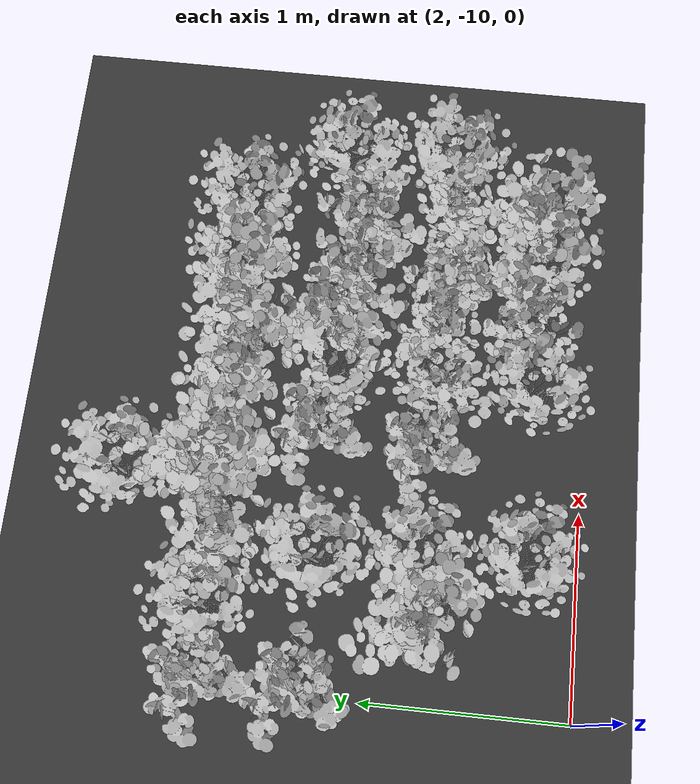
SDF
<sdf version="1.7">
 <world name="default">
  <model name="ground_plane">
   <static>1</static>
   <link name="link">
    <collision name="collision">
     <geometry><plane><normal>0 0 1</normal><size>100 100</size></plane></geometry>
     <surface>
      <contact><collide_bitmask>65535</collide_bitmask></contact>
      <friction><ode><mu>100</mu><mu2>50</mu2></ode></friction>
     </surface>
    </collision>
    <visual name="visual">
     <cast_shadows>0</cast_shadows>
     <geometry><plane><normal>0 0 1</normal><size>100 100</size></plane></geometry>
     <material>
      <ambient>0.2 0.2 0.2 1.0</ambient>
      <diffuse>0.2 0.2 0.2 1.0</diffuse>
      <specular>0.2 0.2 0.2 1.0</specular>
      <emissive>0.2 0.2 0.2 1.0</emissive>
     </material>
    </visual>
   </link>
  </model>
  <model name="ground">
   <pose>5 -0.5 0.01  3.141592654 0 0</pose>
   <static>true</static>
   <link name="body">
    <visual name="visual">
     <cast_shadows>0</cast_shadows>
     <geometry>
      <mesh><uri>file:///home/ifcosta/final_ws/src/cnn_line/worlds/models/ground.obj</uri></mesh>
     </geometry>
    </visual>
   </link>
  </model>
  <model name="plt_30043">
   <pose>2.74 -9.75 0.0141 0.0 0.0 -0.092382</pose>
   <static>true</static>
   <link name="body">
    <visual name="visual">
     <geometry>
      <mesh><uri>file:///home/ifcosta/final_ws/src/cnn_line/worlds/models/plant35.obj</uri></mesh>
     </geometry>
    </visual>
   </link>
  </model>
  <model name="plt_30046">
   <pose>3.6 -9.74 0.0158 0.0 0.0 0.53966</pose>
   <static>true</static>
   <link name="body">
    <visual name="visual">
     <geometry>
      <mesh><uri>file:///home/ifcosta/final_ws/src/cnn_line/worlds/models/plant35.obj</uri></mesh>
     </geometry>
    </visual>
   </link>
  </model>
  <model name="plt_30047">
   <pose>3.9 -9.72 0.0159 0.0 0.0 -1.8546</pose>
   <static>true</static>
   <link name="body">
    <visual name="visual">
     <geometry>
      <mesh><uri>file:///home/ifcosta/final_ws/src/cnn_line/worlds/models/plant33.obj</uri></mesh>
     </geometry>
    </visual>
   </link>
  </model>
  <model name="plt_30048">
   <pose>4.25 -9.74 0.0164 0.0 0.0 -0.12643</pose>
   <static>true</static>
   <link name="body">
    <visual name="visual">
     <geometry>
      <mesh><uri>file:///home/ifcosta/final_ws/src/cnn_line/worlds/models/plant32.obj</uri></mesh>
     </geometry>
    </visual>
   </link>
  </model>
  <model name="plt_30049">
   <pose>4.5 -9.71 0.014 0.0 0.0 -1.0114</pose>
   <static>true</static>
   <link name="body">
    <visual name="visual">
     <geometry>
      <mesh><uri>file:///home/ifcosta/final_ws/src/cnn_line/worlds/models/plant30.obj</uri></mesh>
     </geometry>
    </visual>
   </link>
  </model>
  <model name="plt_30076">
   <pose>2.4 -9.26 0.0146 0.0 0.0 -0.79213</pose>
   <static>true</static>
   <link name="body">
    <visual name="visual">
     <geometry>
      <mesh><uri>file:///home/ifcosta/final_ws/src/cnn_line/worlds/models/plant30.obj</uri></mesh>
     </geometry>
    </visual>
   </link>
  </model>
  <model name="plt_30077">
   <pose>2.7 -9.24 0.0145 0.0 0.0 -0.13937</pose>
   <static>true</static>
   <link name="body">
    <visual name="visual">
     <geometry>
      <mesh><uri>file:///home/ifcosta/final_ws/src/cnn_line/worlds/models/plant35.obj</uri></mesh>
     </geometry>
    </visual>
   </link>
  </model>
  <model name="plt_30079">
   <pose>3.28 -9.22 0.0128 0.0 0.0 0.30534</pose>
   <static>true</static>
   <link name="body">
    <visual name="visual">
     <geometry>
      <mesh><uri>file:///home/ifcosta/final_ws/src/cnn_line/worlds/models/plant33.obj</uri></mesh>
     </geometry>
    </visual>
   </link>
  </model>
  <model name="plt_30080">
   <pose>3.59 -9.25 0.0123 0.0 0.0 0.42134</pose>
   <static>true</static>
   <link name="body">
    <visual name="visual">
     <geometry>
      <mesh><uri>file:///home/ifcosta/final_ws/src/cnn_line/worlds/models/plant31.obj</uri></mesh>
     </geometry>
    </visual>
   </link>
  </model>
  <model name="plt_30081">
   <pose>3.89 -9.22 0.0166 0.0 0.0 2.1917</pose>
   <static>true</static>
   <link name="body">
    <visual name="visual">
     <geometry>
      <mesh><uri>file:///home/ifcosta/final_ws/src/cnn_line/worlds/models/plant31.obj</uri></mesh>
     </geometry>
    </visual>
   </link>
  </model>
  <model name="plt_30082">
   <pose>4.17 -9.24 0.0134 0.0 0.0 0.085329</pose>
   <static>true</static>
   <link name="body">
    <visual name="visual">
     <geometry>
      <mesh><uri>file:///home/ifcosta/final_ws/src/cnn_line/worlds/models/plant34.obj</uri></mesh>
     </geometry>
    </visual>
   </link>
  </model>
  <model name="plt_30083">
   <pose>4.52 -9.29 0.014 0.0 0.0 -0.68579</pose>
   <static>true</static>
   <link name="body">
    <visual name="visual">
     <geometry>
      <mesh><uri>file:///home/ifcosta/final_ws/src/cnn_line/worlds/models/plant31.obj</uri></mesh>
     </geometry>
    </visual>
   </link>
  </model>
  <model name="plt_30084">
   <pose>4.79 -9.25 0.0162 0.0 0.0 -0.47242</pose>
   <static>true</static>
   <link name="body">
    <visual name="visual">
     <geometry>
      <mesh><uri>file:///home/ifcosta/final_ws/src/cnn_line/worlds/models/plant32.obj</uri></mesh>
     </geometry>
    </visual>
   </link>
  </model>
  <model name="plt_30109">
   <pose>2.11 -8.73 0.0164 0.0 0.0 0.026152</pose>
   <static>true</static>
   <link name="body">
    <visual name="visual">
     <geometry>
      <mesh><uri>file:///home/ifcosta/final_ws/src/cnn_line/worlds/models/plant33.obj</uri></mesh>
     </geometry>
    </visual>
   </link>
  </model>
  <model name="plt_30111">
   <pose>2.67 -8.74 0.014 0.0 0.0 0.32932</pose>
   <static>true</static>
   <link name="body">
    <visual name="visual">
     <geometry>
      <mesh><uri>file:///home/ifcosta/final_ws/src/cnn_line/worlds/models/plant32.obj</uri></mesh>
     </geometry>
    </visual>
   </link>
  </model>
  <model name="plt_30113">
   <pose>3.34 -8.71 0.0191 0.0 0.0 0.11175</pose>
   <static>true</static>
   <link name="body">
    <visual name="visual">
     <geometry>
      <mesh><uri>file:///home/ifcosta/final_ws/src/cnn_line/worlds/models/plant33.obj</uri></mesh>
     </geometry>
    </visual>
   </link>
  </model>
  <model name="plt_30114">
   <pose>3.62 -8.75 0.0179 0.0 0.0 -1.6158</pose>
   <static>true</static>
   <link name="body">
    <visual name="visual">
     <geometry>
      <mesh><uri>file:///home/ifcosta/final_ws/src/cnn_line/worlds/models/plant32.obj</uri></mesh>
     </geometry>
    </visual>
   </link>
  </model>
  <model name="plt_30115">
   <pose>3.92 -8.73 0.0164 0.0 0.0 -0.26551</pose>
   <static>true</static>
   <link name="body">
    <visual name="visual">
     <geometry>
      <mesh><uri>file:///home/ifcosta/final_ws/src/cnn_line/worlds/models/plant33.obj</uri></mesh>
     </geometry>
    </visual>
   </link>
  </model>
  <model name="plt_30116">
   <pose>4.19 -8.78 0.0137 0.0 0.0 1.1203</pose>
   <static>true</static>
   <link name="body">
    <visual name="visual">
     <geometry>
      <mesh><uri>file:///home/ifcosta/final_ws/src/cnn_line/worlds/models/plant33.obj</uri></mesh>
     </geometry>
    </visual>
   </link>
  </model>
  <model name="plt_30117">
   <pose>4.48 -8.77 0.0169 0.0 0.0 1.5736</pose>
   <static>true</static>
   <link name="body">
    <visual name="visual">
     <geometry>
      <mesh><uri>file:///home/ifcosta/final_ws/src/cnn_line/worlds/models/plant33.obj</uri></mesh>
     </geometry>
    </visual>
   </link>
  </model>
  <model name="plt_30118">
   <pose>4.78 -8.74 0.0152 0.0 0.0 1.2112</pose>
   <static>true</static>
   <link name="body">
    <visual name="visual">
     <geometry>
      <mesh><uri>file:///home/ifcosta/final_ws/src/cnn_line/worlds/models/plant32.obj</uri></mesh>
     </geometry>
    </visual>
   </link>
  </model>
  <model name="plt_30143">
   <pose>2.12 -8.24 0.0134 0.0 0.0 0.44479</pose>
   <static>true</static>
   <link name="body">
    <visual name="visual">
     <geometry>
      <mesh><uri>file:///home/ifcosta/final_ws/src/cnn_line/worlds/models/plant33.obj</uri></mesh>
     </geometry>
    </visual>
   </link>
  </model>
  <model name="plt_30144">
   <pose>2.4 -8.24 0.0156 0.0 0.0 -0.86817</pose>
   <static>true</static>
   <link name="body">
    <visual name="visual">
     <geometry>
      <mesh><uri>file:///home/ifcosta/final_ws/src/cnn_line/worlds/models/plant35.obj</uri></mesh>
     </geometry>
    </visual>
   </link>
  </model>
  <model name="plt_30145">
   <pose>2.76 -8.27 0.0132 0.0 0.0 0.61703</pose>
   <static>true</static>
   <link name="body">
    <visual name="visual">
     <geometry>
      <mesh><uri>file:///home/ifcosta/final_ws/src/cnn_line/worlds/models/plant36.obj</uri></mesh>
     </geometry>
    </visual>
   </link>
  </model>
  <model name="plt_30146">
   <pose>3.04 -8.2 0.0153 0.0 0.0 -1.2711</pose>
   <static>true</static>
   <link name="body">
    <visual name="visual">
     <geometry>
      <mesh><uri>file:///home/ifcosta/final_ws/src/cnn_line/worlds/models/plant30.obj</uri></mesh>
     </geometry>
    </visual>
   </link>
  </model>
  <model name="plt_30147">
   <pose>3.25 -8.25 0.0127 0.0 0.0 0.31984</pose>
   <static>true</static>
   <link name="body">
    <visual name="visual">
     <geometry>
      <mesh><uri>file:///home/ifcosta/final_ws/src/cnn_line/worlds/models/plant36.obj</uri></mesh>
     </geometry>
    </visual>
   </link>
  </model>
  <model name="plt_30148">
   <pose>3.59 -8.29 0.0161 0.0 0.0 -0.016871</pose>
   <static>true</static>
   <link name="body">
    <visual name="visual">
     <geometry>
      <mesh><uri>file:///home/ifcosta/final_ws/src/cnn_line/worlds/models/plant36.obj</uri></mesh>
     </geometry>
    </visual>
   </link>
  </model>
  <model name="plt_30149">
   <pose>3.91 -8.25 0.015 0.0 0.0 -0.38485</pose>
   <static>true</static>
   <link name="body">
    <visual name="visual">
     <geometry>
      <mesh><uri>file:///home/ifcosta/final_ws/src/cnn_line/worlds/models/plant30.obj</uri></mesh>
     </geometry>
    </visual>
   </link>
  </model>
  <model name="plt_30150">
   <pose>4.14 -8.23 0.0139 0.0 0.0 0.66148</pose>
   <static>true</static>
   <link name="body">
    <visual name="visual">
     <geometry>
      <mesh><uri>file:///home/ifcosta/final_ws/src/cnn_line/worlds/models/plant32.obj</uri></mesh>
     </geometry>
    </visual>
   </link>
  </model>
  <model name="plt_30151">
   <pose>4.48 -8.22 0.0131 0.0 0.0 0.12451</pose>
   <static>true</static>
   <link name="body">
    <visual name="visual">
     <geometry>
      <mesh><uri>file:///home/ifcosta/final_ws/src/cnn_line/worlds/models/plant32.obj</uri></mesh>
     </geometry>
    </visual>
   </link>
  </model>
  <model name="plt_30180">
   <pose>3.01 -7.77 0.0169 0.0 0.0 0.14974</pose>
   <static>true</static>
   <link name="body">
    <visual name="visual">
     <geometry>
      <mesh><uri>file:///home/ifcosta/final_ws/src/cnn_line/worlds/models/plant32.obj</uri></mesh>
     </geometry>
    </visual>
   </link>
  </model>
 </world>
</sdf>
